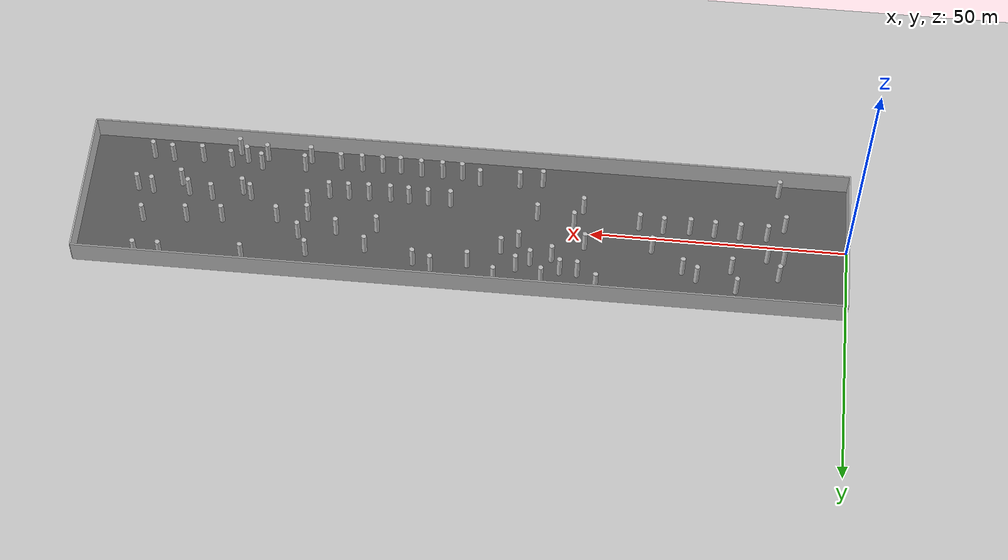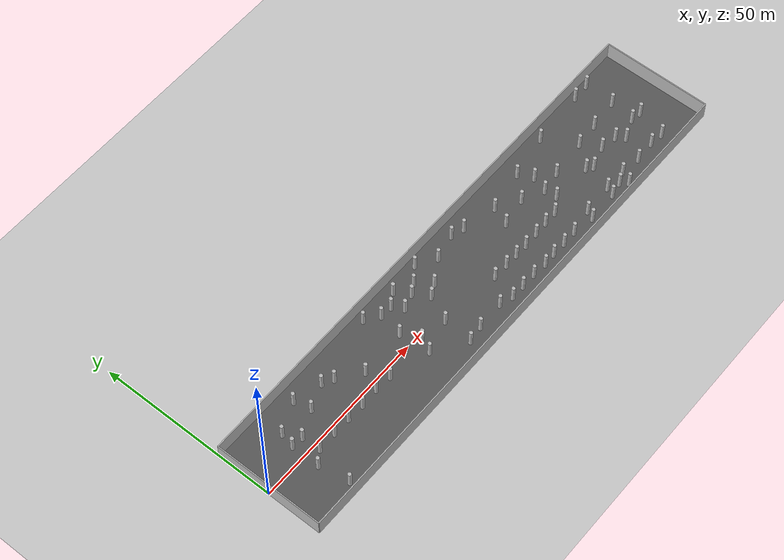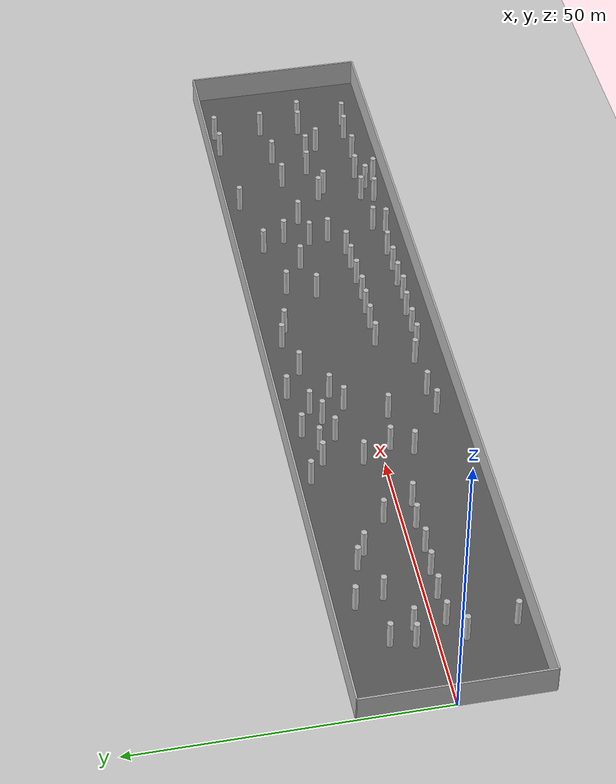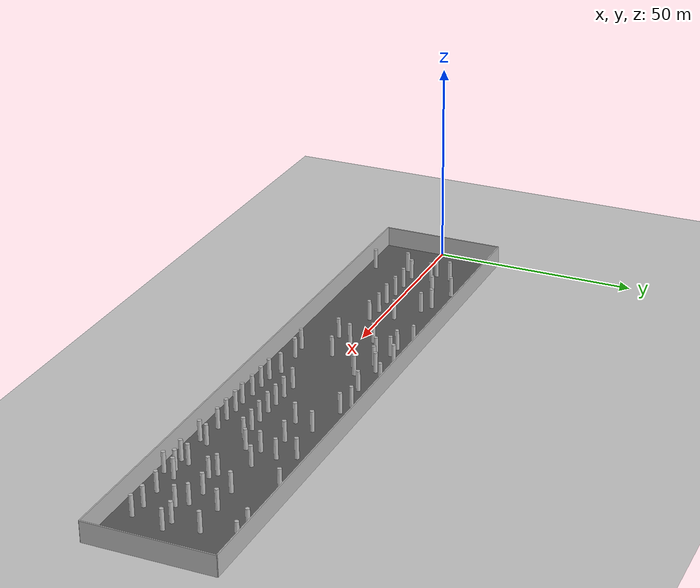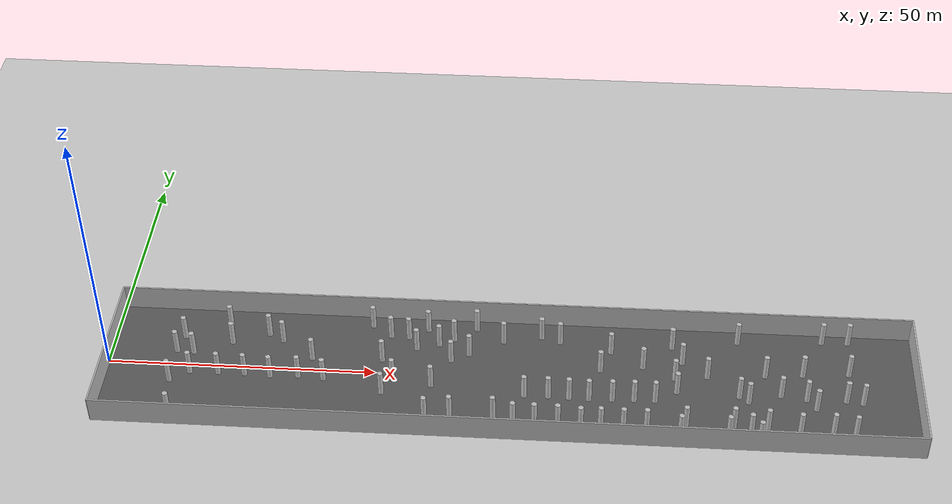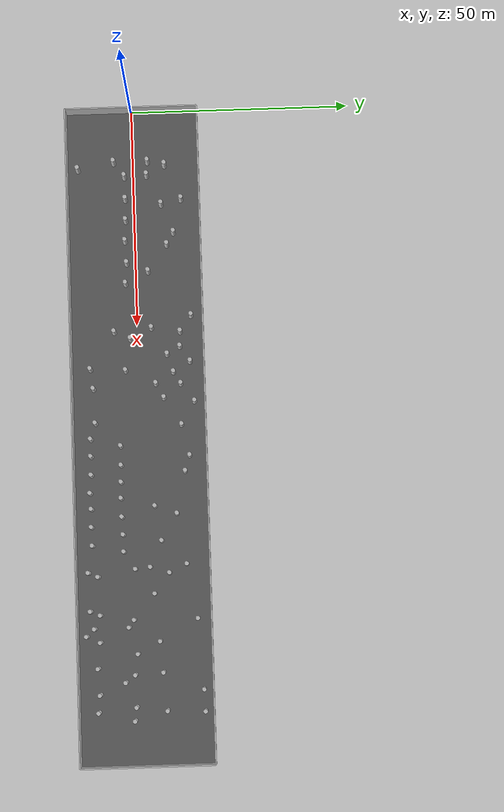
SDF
<?xml version="1.0" ?>
<sdf version="1.5">
  <world name="default">
    <plugin name="gazebo_ros_state" filename="libgazebo_ros_state.so">
      <ros>
        <namespace>/gazebo</namespace>
      </ros>
      <update_rate>20.0</update_rate>
    </plugin>

    <include><uri>model://sun</uri></include>
    <include><uri>model://ground_plane</uri></include>

    <model name="corridor_floor">
      <static>true</static>
      <pose>75 0 0.01 0 0 0</pose>
      <link name="link">
        <collision name="collision">
          <geometry><box><size>150 30 0.02</size></box></geometry>
        </collision>
        <visual name="visual">
          <geometry><box><size>150 30 0.02</size></box></geometry>
          <material>
            <ambient>0.25 0.25 0.25 1</ambient>
            <diffuse>0.35 0.35 0.35 1</diffuse>
          </material>
        </visual>
      </link>
    </model>

    <physics name="default_physics" default="0" type="ode">
      <gravity>0 0 -9.8066</gravity>
      <ode>
        <solver>
          <type>quick</type>
          <iters>10</iters>
          <sor>1.3</sor>
          <use_dynamic_moi_rescaling>0</use_dynamic_moi_rescaling>
        </solver>
        <constraints>
          <cfm>0</cfm>
          <erp>0.2</erp>
          <contact_max_correcting_vel>100</contact_max_correcting_vel>
          <contact_surface_layer>0.001</contact_surface_layer>
        </constraints>
      </ode>
      <max_step_size>0.004</max_step_size>
      <real_time_factor>1</real_time_factor>
      <real_time_update_rate>250</real_time_update_rate>
      <magnetic_field>6.0e-6 2.3e-5 -4.2e-5</magnetic_field>
    </physics>

    <model name="left_wall">
      <static>true</static>
      <pose>75 15.15 2.5 0 0 0</pose>
      <link name="link">
        <collision name="collision">
          <geometry><box><size>150 0.3 5</size></box></geometry>
        </collision>
        <visual name="visual">
          <geometry><box><size>150 0.3 5</size></box></geometry>
        </visual>
      </link>
    </model>

    <model name="right_wall">
      <static>true</static>
      <pose>75 -15.15 2.5 0 0 0</pose>
      <link name="link">
        <collision name="collision">
          <geometry><box><size>150 0.3 5</size></box></geometry>
        </collision>
        <visual name="visual">
          <geometry><box><size>150 0.3 5</size></box></geometry>
        </visual>
      </link>
    </model>

    <model name="start_wall">
      <static>true</static>
      <pose>0 0 2.5 0 0 0</pose>
      <link name="link">
        <collision name="collision">
          <geometry><box><size>0.3 30.3 5</size></box></geometry>
        </collision>
        <visual name="visual">
          <geometry><box><size>0.3 30.3 5</size></box></geometry>
        </visual>
      </link>
    </model>

    <model name="end_wall">
      <static>true</static>
      <pose>150 0 2.5 0 0 0</pose>
      <link name="link">
        <collision name="collision">
          <geometry><box><size>0.3 30.3 5</size></box></geometry>
        </collision>
        <visual name="visual">
          <geometry><box><size>0.3 30.3 5</size></box></geometry>
        </visual>
      </link>
    </model>

    <include><name>cylinder_000</name><uri>model://cylinder_r05_h5</uri><pose>15.624 -1.941 2.5 0 0 0</pose></include>
    <include><name>cylinder_001</name><uri>model://cylinder_r05_h5</uri><pose>20.916 -1.870 2.5 0 0 0</pose></include>
    <include><name>cylinder_002</name><uri>model://cylinder_r05_h5</uri><pose>25.880 -1.922 2.5 0 0 0</pose></include>
    <include><name>cylinder_003</name><uri>model://cylinder_r05_h5</uri><pose>30.689 -2.155 2.5 0 0 0</pose></include>
    <include><name>cylinder_004</name><uri>model://cylinder_r05_h5</uri><pose>35.865 -1.905 2.5 0 0 0</pose></include>
    <include><name>cylinder_005</name><uri>model://cylinder_r05_h5</uri><pose>40.597 -2.311 2.5 0 0 0</pose></include>
    <include><name>cylinder_006</name><uri>model://cylinder_r05_h5</uri><pose>64.714 -10.237 2.5 0 0 0</pose></include>
    <include><name>cylinder_007</name><uri>model://cylinder_r05_h5</uri><pose>60.176 -10.848 2.5 0 0 0</pose></include>
    <include><name>cylinder_008</name><uri>model://cylinder_r05_h5</uri><pose>72.593 -9.984 2.5 0 0 0</pose></include>
    <include><name>cylinder_009</name><uri>model://cylinder_r05_h5</uri><pose>53.395 -1.537 2.5 0 0 0</pose></include>
    <include><name>cylinder_010</name><uri>model://cylinder_r05_h5</uri><pose>51.722 -5.187 2.5 0 0 0</pose></include>
    <include><name>cylinder_011</name><uri>model://cylinder_r05_h5</uri><pose>60.658 -2.780 2.5 0 0 0</pose></include>
    <include><name>cylinder_012</name><uri>model://cylinder_r05_h5</uri><pose>76.246 -11.112 2.5 0 0 0</pose></include>
    <include><name>cylinder_013</name><uri>model://cylinder_r05_h5</uri><pose>77.938 -4.347 2.5 0 0 0</pose></include>
    <include><name>cylinder_014</name><uri>model://cylinder_r05_h5</uri><pose>80.154 -11.159 2.5 0 0 0</pose></include>
    <include><name>cylinder_015</name><uri>model://cylinder_r05_h5</uri><pose>82.361 -4.359 2.5 0 0 0</pose></include>
    <include><name>cylinder_016</name><uri>model://cylinder_r05_h5</uri><pose>84.391 -11.172 2.5 0 0 0</pose></include>
    <include><name>cylinder_017</name><uri>model://cylinder_r05_h5</uri><pose>86.184 -4.446 2.5 0 0 0</pose></include>
    <include><name>cylinder_018</name><uri>model://cylinder_r05_h5</uri><pose>88.533 -11.524 2.5 0 0 0</pose></include>
    <include><name>cylinder_019</name><uri>model://cylinder_r05_h5</uri><pose>89.838 -4.559 2.5 0 0 0</pose></include>
    <include><name>cylinder_020</name><uri>model://cylinder_r05_h5</uri><pose>92.144 -11.341 2.5 0 0 0</pose></include>
    <include><name>cylinder_021</name><uri>model://cylinder_r05_h5</uri><pose>94.080 -4.453 2.5 0 0 0</pose></include>
    <include><name>cylinder_022</name><uri>model://cylinder_r05_h5</uri><pose>96.232 -11.384 2.5 0 0 0</pose></include>
    <include><name>cylinder_023</name><uri>model://cylinder_r05_h5</uri><pose>98.087 -4.292 2.5 0 0 0</pose></include>
    <include><name>cylinder_024</name><uri>model://cylinder_r05_h5</uri><pose>100.413 -11.309 2.5 0 0 0</pose></include>
    <include><name>cylinder_025</name><uri>model://cylinder_r05_h5</uri><pose>101.921 -4.236 2.5 0 0 0</pose></include>
    <include><name>cylinder_026</name><uri>model://cylinder_r05_h5</uri><pose>133.940 -10.321 2.5 0 0 0</pose></include>
    <include><name>cylinder_027</name><uri>model://cylinder_r05_h5</uri><pose>128.023 -10.655 2.5 0 0 0</pose></include>
    <include><name>cylinder_028</name><uri>model://cylinder_r05_h5</uri><pose>119.163 -11.276 2.5 0 0 0</pose></include>
    <include><name>cylinder_029</name><uri>model://cylinder_r05_h5</uri><pose>107.476 -10.215 2.5 0 0 0</pose></include>
    <include><name>cylinder_030</name><uri>model://cylinder_r05_h5</uri><pose>117.335 -2.292 2.5 0 0 0</pose></include>
    <include><name>cylinder_031</name><uri>model://cylinder_r05_h5</uri><pose>119.022 -3.487 2.5 0 0 0</pose></include>
    <include><name>cylinder_032</name><uri>model://cylinder_r05_h5</uri><pose>131.312 -4.511 2.5 0 0 0</pose></include>
    <include><name>cylinder_033</name><uri>model://cylinder_r05_h5</uri><pose>124.978 -1.594 2.5 0 0 0</pose></include>
    <include><name>cylinder_034</name><uri>model://cylinder_r05_h5</uri><pose>116.124 -9.873 2.5 0 0 0</pose></include>
    <include><name>cylinder_035</name><uri>model://cylinder_r05_h5</uri><pose>129.648 -2.296 2.5 0 0 0</pose></include>
    <include><name>cylinder_036</name><uri>model://cylinder_r05_h5</uri><pose>106.520 -12.358 2.5 0 0 0</pose></include>
    <include><name>cylinder_037</name><uri>model://cylinder_r05_h5</uri><pose>105.921 -1.726 2.5 0 0 0</pose></include>
    <include><name>cylinder_038</name><uri>model://cylinder_r05_h5</uri><pose>122.208 -9.994 2.5 0 0 0</pose></include>
    <include><name>cylinder_039</name><uri>model://cylinder_r05_h5</uri><pose>120.796 -13.059 2.5 0 0 0</pose></include>
    <include><name>cylinder_040</name><uri>model://cylinder_r05_h5</uri><pose>115.213 -12.084 2.5 0 0 0</pose></include>
    <include><name>cylinder_041</name><uri>model://cylinder_r05_h5</uri><pose>12.204 -4.366 2.5 0 0 0</pose></include>
    <include><name>cylinder_042</name><uri>model://cylinder_r05_h5</uri><pose>13.666 -12.625 2.5 0 0 0</pose></include>
    <include><name>cylinder_043</name><uri>model://cylinder_r05_h5</uri><pose>139.872 -2.599 2.5 0 0 0</pose></include>
    <include><name>cylinder_044</name><uri>model://cylinder_r05_h5</uri><pose>136.855 -2.216 2.5 0 0 0</pose></include>
    <include><name>cylinder_045</name><uri>model://cylinder_r05_h5</uri><pose>137.867 -10.700 2.5 0 0 0</pose></include>
    <include><name>cylinder_046</name><uri>model://cylinder_r05_h5</uri><pose>84.000 10.138 2.5 0 0 0</pose></include>
    <include><name>cylinder_047</name><uri>model://cylinder_r05_h5</uri><pose>105.054 9.924 2.5 0 0 0</pose></include>
    <include><name>cylinder_048</name><uri>model://cylinder_r05_h5</uri><pose>111.544 2.508 2.5 0 0 0</pose></include>
    <include><name>cylinder_049</name><uri>model://cylinder_r05_h5</uri><pose>68.101 12.723 2.5 0 0 0</pose></include>
    <include><name>cylinder_050</name><uri>model://cylinder_r05_h5</uri><pose>106.942 5.961 2.5 0 0 0</pose></include>
    <include><name>cylinder_051</name><uri>model://cylinder_r05_h5</uri><pose>73.367 9.616 2.5 0 0 0</pose></include>
    <include><name>cylinder_052</name><uri>model://cylinder_r05_h5</uri><pose>67.111 5.782 2.5 0 0 0</pose></include>
    <include><name>cylinder_053</name><uri>model://cylinder_r05_h5</uri><pose>15.420 3.144 2.5 0 0 0</pose></include>
    <include><name>cylinder_054</name><uri>model://cylinder_r05_h5</uri><pose>57.177 6.779 2.5 0 0 0</pose></include>
    <include><name>cylinder_055</name><uri>model://cylinder_r05_h5</uri><pose>52.012 9.862 2.5 0 0 0</pose></include>
    <include><name>cylinder_056</name><uri>model://cylinder_r05_h5</uri><pose>64.002 9.671 2.5 0 0 0</pose></include>
    <include><name>cylinder_057</name><uri>model://cylinder_r05_h5</uri><pose>31.745 7.375 2.5 0 0 0</pose></include>
    <include><name>cylinder_058</name><uri>model://cylinder_r05_h5</uri><pose>28.943 8.948 2.5 0 0 0</pose></include>
    <include><name>cylinder_059</name><uri>model://cylinder_r05_h5</uri><pose>22.273 6.316 2.5 0 0 0</pose></include>
    <include><name>cylinder_060</name><uri>model://cylinder_r05_h5</uri><pose>137.785 4.710 2.5 0 0 0</pose></include>
    <include><name>cylinder_061</name><uri>model://cylinder_r05_h5</uri><pose>13.078 7.305 2.5 0 0 0</pose></include>
    <include><name>cylinder_062</name><uri>model://cylinder_r05_h5</uri><pose>48.316 12.462 2.5 0 0 0</pose></include>
    <include><name>cylinder_063</name><uri>model://cylinder_r05_h5</uri><pose>105.550 1.648 2.5 0 0 0</pose></include>
    <include><name>cylinder_064</name><uri>model://cylinder_r05_h5</uri><pose>91.759 3.045 2.5 0 0 0</pose></include>
    <include><name>cylinder_065</name><uri>model://cylinder_r05_h5</uri><pose>50.981 3.339 2.5 0 0 0</pose></include>
    <include><name>cylinder_066</name><uri>model://cylinder_r05_h5</uri><pose>93.605 7.997 2.5 0 0 0</pose></include>
    <include><name>cylinder_067</name><uri>model://cylinder_r05_h5</uri><pose>117.356 12.057 2.5 0 0 0</pose></include>
    <include><name>cylinder_068</name><uri>model://cylinder_r05_h5</uri><pose>133.244 13.016 2.5 0 0 0</pose></include>
    <include><name>cylinder_069</name><uri>model://cylinder_r05_h5</uri><pose>63.832 4.008 2.5 0 0 0</pose></include>
    <include><name>cylinder_070</name><uri>model://cylinder_r05_h5</uri><pose>80.472 11.243 2.5 0 0 0</pose></include>
    <include><name>cylinder_071</name><uri>model://cylinder_r05_h5</uri><pose>37.863 2.920 2.5 0 0 0</pose></include>
    <include><name>cylinder_072</name><uri>model://cylinder_r05_h5</uri><pose>55.429 9.707 2.5 0 0 0</pose></include>
    <include><name>cylinder_073</name><uri>model://cylinder_r05_h5</uri><pose>61.287 8.097 2.5 0 0 0</pose></include>
    <include><name>cylinder_074</name><uri>model://cylinder_r05_h5</uri><pose>21.191 10.916 2.5 0 0 0</pose></include>
    <include><name>cylinder_075</name><uri>model://cylinder_r05_h5</uri><pose>122.265 3.445 2.5 0 0 0</pose></include>
    <include><name>cylinder_076</name><uri>model://cylinder_r05_h5</uri><pose>58.928 11.949 2.5 0 0 0</pose></include>
    <include><name>cylinder_077</name><uri>model://cylinder_r05_h5</uri><pose>129.238 4.005 2.5 0 0 0</pose></include>
    <include><name>cylinder_078</name><uri>model://cylinder_r05_h5</uri><pose>99.634 4.383 2.5 0 0 0</pose></include>
    <include><name>cylinder_079</name><uri>model://cylinder_r05_h5</uri><pose>138.134 13.188 2.5 0 0 0</pose></include>
    <include><name>cylinder_080</name><uri>model://cylinder_r05_h5</uri><pose>12.210 3.432 2.5 0 0 0</pose></include>

  </world>
</sdf>

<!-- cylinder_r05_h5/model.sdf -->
<sdf version="1.5">
  <model name="cylinder_r05_h5">
    <static>true</static>
    <link name="link">
      <collision name="collision">
        <geometry>
          <cylinder>
            <radius>0.5</radius>
            <length>5</length>
          </cylinder>
        </geometry>
      </collision>
      <visual name="visual">
        <geometry>
          <cylinder>
            <radius>0.5</radius>
            <length>5</length>
          </cylinder>
        </geometry>
        <material>
          <ambient>0.5 0.5 0.5 1</ambient>
          <diffuse>0.75 0.75 0.75 1</diffuse>
        </material>
      </visual>
    </link>
  </model>
</sdf>
